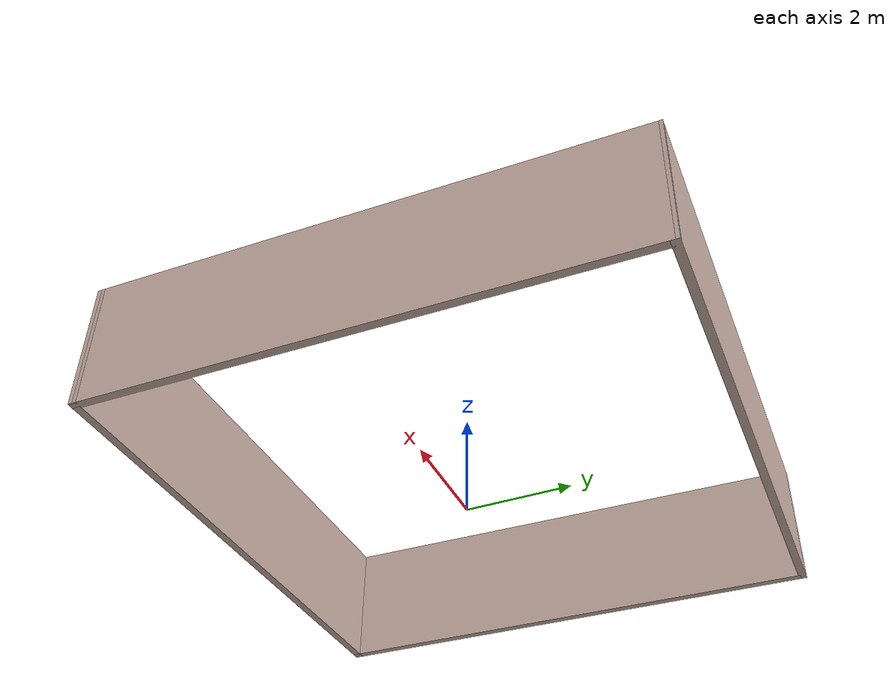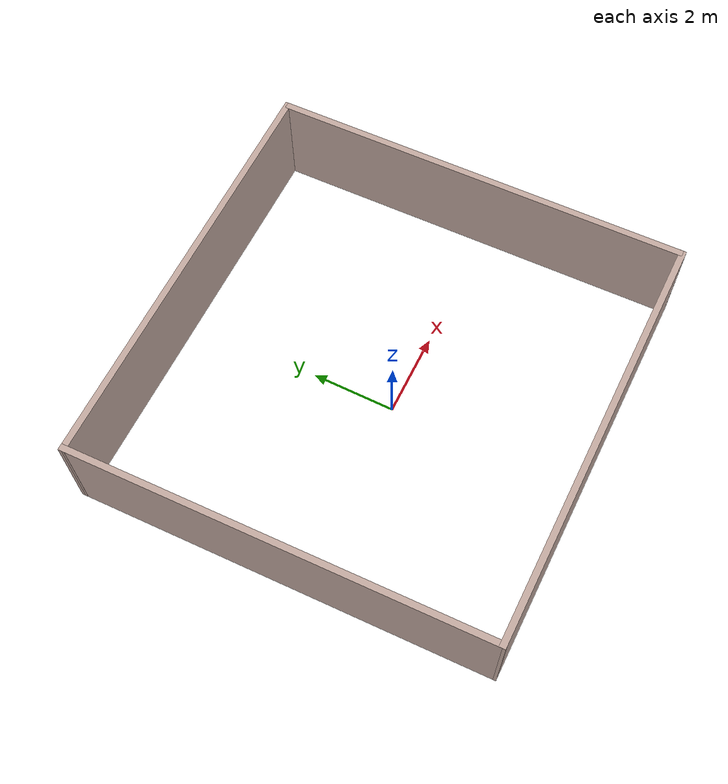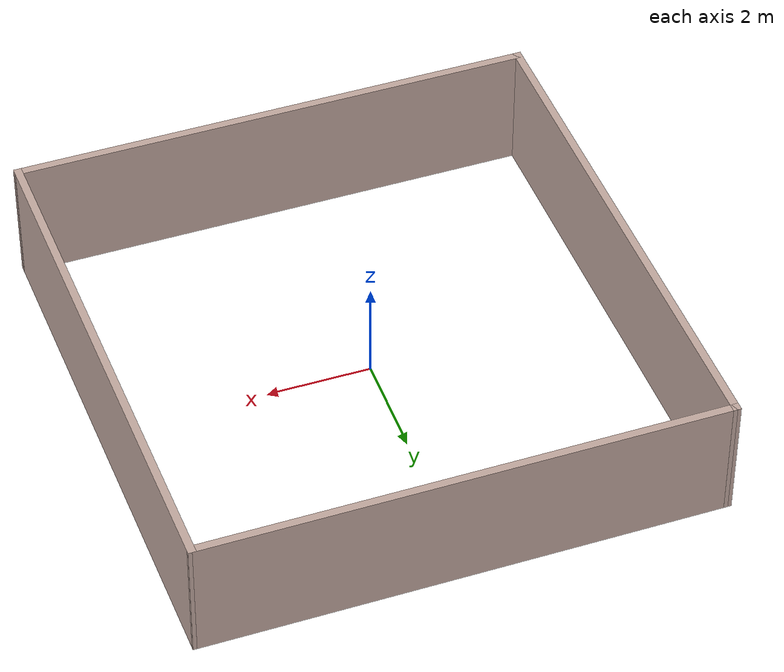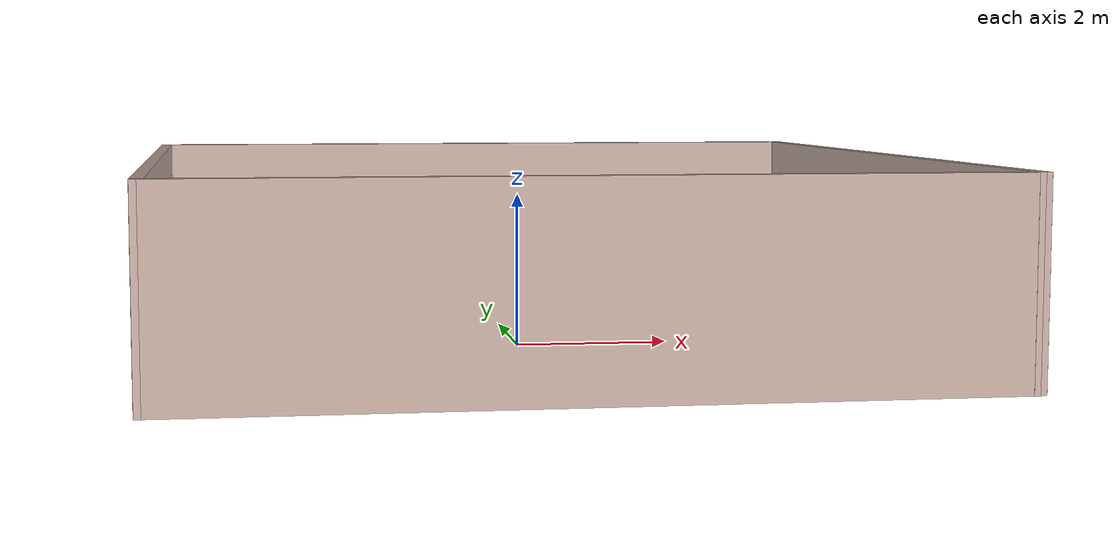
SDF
<?xml version='1.0'?>
<sdf version='1.7'>
  <model name='platz_02'>
    <pose>0.203041 0.3005 0 0 -0 0</pose>
    <link name='Wall_0'>
      <collision name='Wall_0_Collision'>
        <geometry>
          <box>
            <size>10 0.15 2.5</size>
          </box>
        </geometry>
        <pose>0 0 1.25 0 -0 0</pose>
      </collision>
      <visual name='Wall_0_Visual'>
        <pose>0 0 1.25 0 -0 0</pose>
        <geometry>
          <box>
            <size>10 0.15 2.5</size>
          </box>
        </geometry>
        <material>
          <script>
            <uri>file://media/materials/scripts/gazebo.material</uri>
            <name>Gazebo/Grey</name>
          </script>
          <ambient>0.760784 0.662745 0.627451 1</ambient>
        </material>
        <meta>
          <layer>0</layer>
        </meta>
      </visual>
      <pose>-0.121866 4.92343 0 0 -0 -1.4e-05</pose>
    </link>
    <link name='Wall_1'>
      <collision name='Wall_1_Collision'>
        <geometry>
          <box>
            <size>10 0.15 2.5</size>
          </box>
        </geometry>
        <pose>0 0 1.25 0 -0 0</pose>
      </collision>
      <visual name='Wall_1_Visual'>
        <pose>0 0 1.25 0 -0 0</pose>
        <geometry>
          <box>
            <size>10 0.15 2.5</size>
          </box>
        </geometry>
        <material>
          <script>
            <uri>file://media/materials/scripts/gazebo.material</uri>
            <name>Gazebo/Grey</name>
          </script>
          <ambient>0.760784 0.662745 0.627451 1</ambient>
        </material>
        <meta>
          <layer>0</layer>
        </meta>
      </visual>
      <pose>4.92518 -0.000134 0 0 -0 -1.54605</pose>
    </link>
    <link name='Wall_3'>
      <collision name='Wall_3_Collision'>
        <geometry>
          <box>
            <size>10 0.15 2.5</size>
          </box>
        </geometry>
        <pose>0 0 1.25 0 -0 0</pose>
      </collision>
      <visual name='Wall_3_Visual'>
        <pose>0 0 1.25 0 -0 0</pose>
        <geometry>
          <box>
            <size>10 0.15 2.5</size>
          </box>
        </geometry>
        <material>
          <script>
            <uri>file://media/materials/scripts/gazebo.material</uri>
            <name>Gazebo/Grey</name>
          </script>
          <ambient>0.760784 0.662745 0.627451 1</ambient>
        </material>
        <meta>
          <layer>0</layer>
        </meta>
      </visual>
      <pose>0.122003 -4.92356 0 0 -0 3.14158</pose>
    </link>
    <link name='Wall_4'>
      <collision name='Wall_4_Collision'>
        <geometry>
          <box>
            <size>10.0003 0.15 2.5</size>
          </box>
        </geometry>
        <pose>0 0 1.25 0 -0 0</pose>
      </collision>
      <visual name='Wall_4_Visual'>
        <pose>0 0 1.25 0 -0 0</pose>
        <geometry>
          <box>
            <size>10.0003 0.15 2.5</size>
          </box>
        </geometry>
        <material>
          <script>
            <uri>file://media/materials/scripts/gazebo.material</uri>
            <name>Gazebo/Grey</name>
          </script>
          <ambient>0.760784 0.662745 0.627451 1</ambient>
        </material>
        <meta>
          <layer>0</layer>
        </meta>
      </visual>
      <pose>-4.92504 0 0 0 -0 1.59557</pose>
    </link>
    <static>1</static>
  </model>
</sdf>
